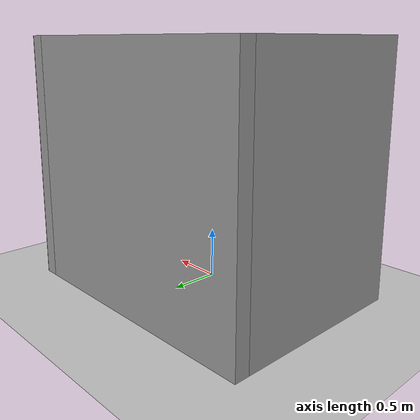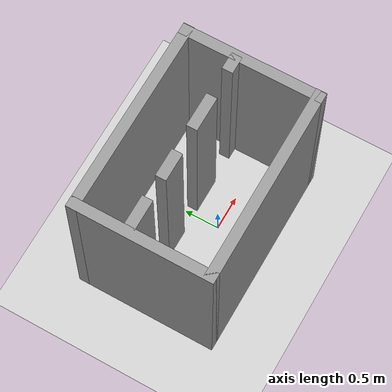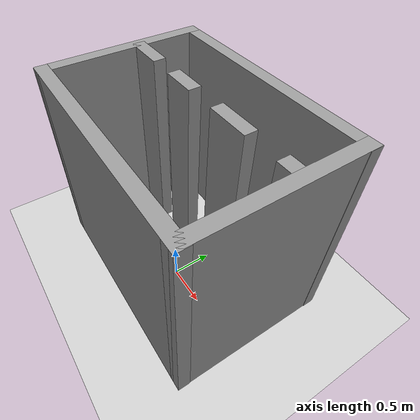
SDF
<sdf version="1.7">
 <world name="default">
  <light name="sun" type="directional">
   <pose>0 0 10 0 -0 0</pose>
   <diffuse>0.8 0.8 0.8 1</diffuse>
   <specular>0.2 0.2 0.2 1</specular>
   <attenuation>
    <range>1000</range>
    <constant>0.9</constant>
    <linear>0.01</linear>
    <quadratic>0.001</quadratic>
   </attenuation>
   <direction>-0.5 0.1 -0.9</direction>
   <spot><inner_angle>0</inner_angle><outer_angle>0</outer_angle><falloff>0</falloff></spot>
  </light>
  <model name="ground_plane">
   <static>1</static>
   <link name="link">
    <collision name="collision">
     <geometry><plane><normal>0 0 1</normal><size>100 100</size></plane></geometry>
     <surface>
      <contact><collide_bitmask>65535</collide_bitmask></contact>
      <friction><ode><mu>100</mu><mu2>50</mu2></ode></friction>
     </surface>
    </collision>
    <visual name="visual">
     <cast_shadows>0</cast_shadows>
     <geometry><plane><normal>0 0 1</normal><size>100 100</size></plane></geometry>
     <material>
      <script><uri>file://media/materials/scripts/gazebo.material</uri><name>Gazebo/Grey</name></script>
     </material>
    </visual>
   </link>
  </model>
  <gravity>0 0 -9.8</gravity>
  <magnetic_field>6e-06 2.3e-05 -4.2e-05</magnetic_field>
  <atmosphere type="adiabatic"/>
  <physics type="ode">
   <max_step_size>0.001</max_step_size>
   <real_time_factor>1</real_time_factor>
   <real_time_update_rate>1000</real_time_update_rate>
  </physics>
  <scene><ambient>0.4 0.4 0.4 1</ambient><background>0.7 0.7 0.7 1</background><shadows>1</shadows></scene>
  <spherical_coordinates>
   <surface_model>EARTH_WGS84</surface_model>
   <latitude_deg>0</latitude_deg>
   <longitude_deg>0</longitude_deg>
   <elevation>0</elevation>
   <heading_deg>0</heading_deg>
  </spherical_coordinates>
  <model name="Untitled">
   <pose>-0.117962 0.861745 0 0 -0 0</pose>
   <link name="Wall_0">
    <collision name="Wall_0_Collision">
     <geometry><box><size>2 0.15 2.5</size></box></geometry>
     <pose>0 0 1.25 0 -0 0</pose>
    </collision>
    <visual name="Wall_0_Visual">
     <pose>0 0 1.25 0 -0 0</pose>
     <geometry><box><size>2 0.15 2.5</size></box></geometry>
     <material>
      <script><uri>file://media/materials/scripts/gazebo.material</uri><name>Gazebo/Grey</name></script>
      <ambient>1 1 1 1</ambient>
     </material>
     <meta><layer>0</layer></meta>
    </visual>
    <pose>-1.33517 -0.6275 0 0 -0 -1.5708</pose>
   </link>
   <link name="Wall_1">
    <collision name="Wall_1_Collision">
     <geometry><box><size>2.82034 0.15 2.5</size></box></geometry>
     <pose>0 0 1.25 0 -0 0</pose>
    </collision>
    <visual name="Wall_1_Visual">
     <pose>0 0 1.25 0 -0 0</pose>
     <geometry><box><size>2.82034 0.15 2.5</size></box></geometry>
     <material>
      <script><uri>file://media/materials/scripts/gazebo.material</uri><name>Gazebo/Grey</name></script>
      <ambient>1 1 1 1</ambient>
     </material>
     <meta><layer>0</layer></meta>
    </visual>
    <pose>0 -1.5525 0 0 -0 0</pose>
   </link>
   <link name="Wall_12">
    <collision name="Wall_12_Collision">
     <geometry><box><size>0.5 0.15 2.5</size></box></geometry>
     <pose>0 0 1.25 0 -0 0</pose>
    </collision>
    <visual name="Wall_12_Visual">
     <pose>0 0 1.25 0 -0 0</pose>
     <geometry><box><size>0.5 0.15 2.5</size></box></geometry>
     <material>
      <script><uri>file://media/materials/scripts/gazebo.material</uri><name>Gazebo/Grey</name></script>
      <ambient>1 1 1 1</ambient>
     </material>
     <meta><layer>0</layer></meta>
    </visual>
    <pose>-1.09758 -0.424512 0 0 -0 0</pose>
   </link>
   <link name="Wall_16">
    <collision name="Wall_16_Collision">
     <geometry><box><size>0.4 0.15 2.5</size></box></geometry>
     <pose>0 0 1.25 0 -0 0</pose>
    </collision>
    <visual name="Wall_16_Visual">
     <pose>0 0 1.25 0 -0 0</pose>
     <geometry><box><size>0.4 0.15 2.5</size></box></geometry>
     <material>
      <script><uri>file://media/materials/scripts/gazebo.material</uri><name>Gazebo/Grey</name></script>
      <ambient>1 1 1 1</ambient>
     </material>
     <meta><layer>0</layer></meta>
    </visual>
    <pose>-0.352097 -0.428835 0 0 -0 0</pose>
   </link>
   <link name="Wall_19">
    <collision name="Wall_19_Collision">
     <geometry><box><size>0.5 0.15 2.5</size></box></geometry>
     <pose>0 0 1.25 0 -0 0</pose>
    </collision>
    <visual name="Wall_19_Visual">
     <pose>0 0 1.25 0 -0 0</pose>
     <geometry><box><size>0.5 0.15 2.5</size></box></geometry>
     <material>
      <script><uri>file://media/materials/scripts/gazebo.material</uri><name>Gazebo/Grey</name></script>
      <ambient>1 1 1 1</ambient>
     </material>
     <meta><layer>0</layer></meta>
    </visual>
    <pose>0.450153 -0.424512 0 0 -0 0</pose>
   </link>
   <link name="Wall_2">
    <collision name="Wall_2_Collision">
     <geometry><box><size>2 0.15 2.5</size></box></geometry>
     <pose>0 0 1.25 0 -0 0</pose>
    </collision>
    <visual name="Wall_2_Visual">
     <pose>0 0 1.25 0 -0 0</pose>
     <geometry><box><size>2 0.15 2.5</size></box></geometry>
     <material>
      <script><uri>file://media/materials/scripts/gazebo.material</uri><name>Gazebo/Grey</name></script>
      <ambient>1 1 1 1</ambient>
     </material>
     <meta><layer>0</layer></meta>
    </visual>
    <pose>1.3302 -0.6275 0 0 -0 1.5708</pose>
   </link>
   <link name="Wall_21">
    <collision name="Wall_21_Collision">
     <geometry><box><size>0.25 0.15 2.5</size></box></geometry>
     <pose>0 0 1.25 0 -0 0</pose>
    </collision>
    <visual name="Wall_21_Visual">
     <pose>0 0 1.25 0 -0 0</pose>
     <geometry><box><size>0.25 0.15 2.5</size></box></geometry>
     <material>
      <script><uri>file://media/materials/scripts/gazebo.material</uri><name>Gazebo/Grey</name></script>
      <ambient>1 1 1 1</ambient>
     </material>
     <meta><layer>0</layer></meta>
    </visual>
    <pose>1.21142 -0.420188 0 0 -0 0</pose>
   </link>
   <link name="Wall_3">
    <collision name="Wall_3_Collision">
     <geometry><box><size>2.82034 0.15 2.5</size></box></geometry>
     <pose>0 0 1.25 0 -0 0</pose>
    </collision>
    <visual name="Wall_3_Visual">
     <pose>0 0 1.25 0 -0 0</pose>
     <geometry><box><size>2.82034 0.15 2.5</size></box></geometry>
     <material>
      <script><uri>file://media/materials/scripts/gazebo.material</uri><name>Gazebo/Grey</name></script>
      <ambient>1 1 1 1</ambient>
     </material>
     <meta><layer>0</layer></meta>
    </visual>
    <pose>0 0.2975 0 0 -0 3.14159</pose>
   </link>
   <static>1</static>
  </model>
 </world>
</sdf>
